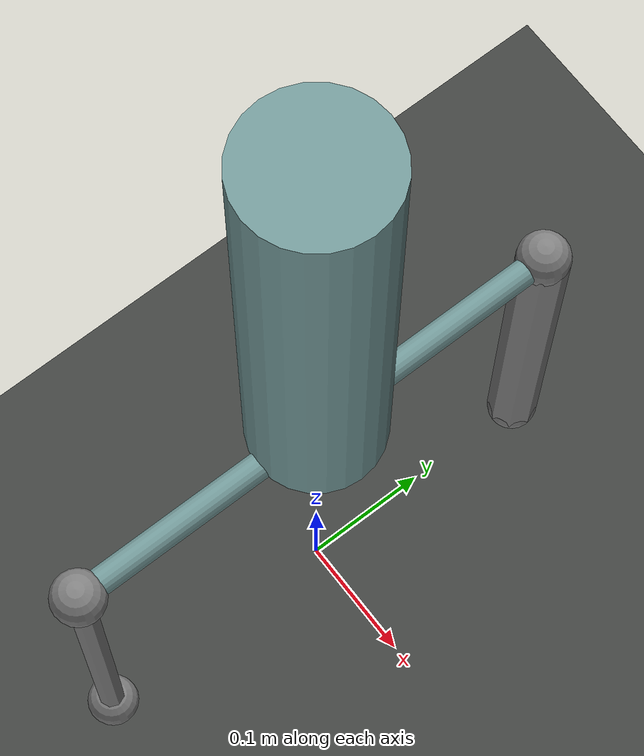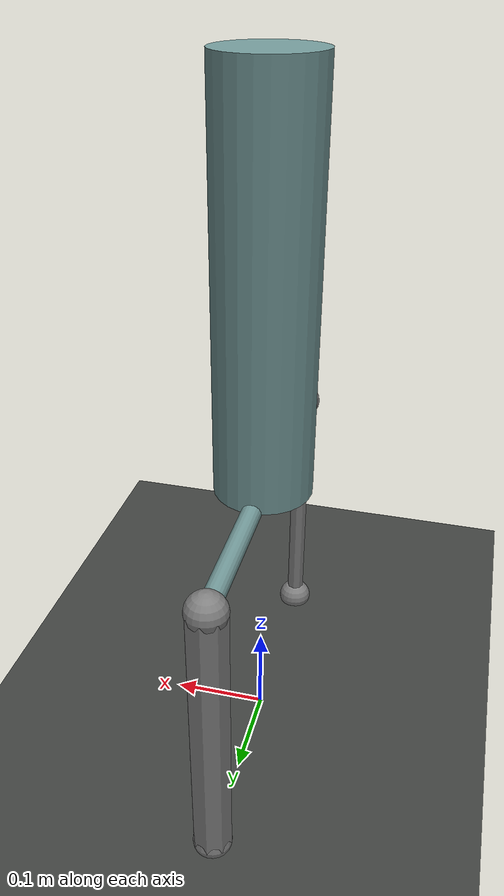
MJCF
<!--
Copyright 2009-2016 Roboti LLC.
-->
<mujoco model="beamBalance (v1.31)">
	<compiler 	inertiafromgeom="true"
				angle="radian"/>

	<option	timestep="0.001"
			iterations="20">
	</option>

	<default>
		<geom  rgba="0.45 0.6 0.6 1"/>
		<site type="sphere" size="0.02"/>
	</default>

	<worldbody>
		<camera name="track" mode="trackcom" pos="0 -3 1" xyaxes="1 0 0 0 0 1"/>

		<light directional="true" cutoff="4" exponent="20" diffuse="1 1 1" specular="0 0 0" pos=".9 .3 2.5" dir="-.9 -.3 -2.5 "/>

		<!-- ======= Ground ======= -->
		<geom name="ground" type="plane" pos="0 0 0" size="0.5 1 2" rgba=" .25 .26 .25 1" contype="0" conaffinity="0"/>
		<site name="rFix" pos="0 -.2 .005"/>
		<site name="lFix" pos="0 .2 .005"/>

		<!-- ======= Beam ======= -->
		<body name="beam" pos="0 0 .5">

            <geom type="cylinder" size=".05 .2"/>
			<geom pos="0 0 -.2" type="capsule" size=".01 .2" euler="1.57 0 0"/>
			<joint name="pivot" pos="0 0 -.2" axis="1 0 0" limited="true" range="-1.5 1.5" damping=".5"/>
			<site name="rBeam" pos="0 -.2 -.2"/>
			<site name="lBeam" pos="0 .2 -.2"/>
		</body>
	</worldbody>

	<tendon>
		<spatial name="lThread" width="0.02">
			<site site="lBeam"/>
			<site site="lFix"/>
		</spatial>

		<spatial name="rThread"  width="0.01">
			<site site="rBeam"/>
			<site site="rFix"/>
		</spatial>

		<fixed name="pivotThread">
			<joint joint="pivot" coef="1"/>
		</fixed>
	</tendon>

	<actuator>
		<general name="lPushPull" tendon="lThread" ctrllimited="true"  gainprm="50" ctrlrange="-5 5"/>
		<general name="rPushPull" tendon="rThread" ctrllimited="true"  gainprm="50" ctrlrange="-5 5"/>
		<general name="pivotRoll" tendon="pivotThread" ctrllimited="true"  gainprm="50" ctrlrange="-5 5"/>
	</actuator>
</mujoco>
